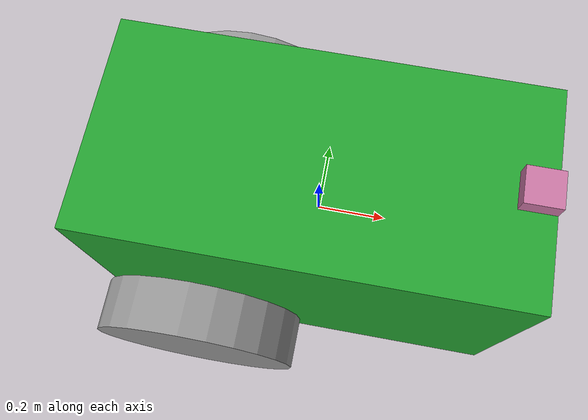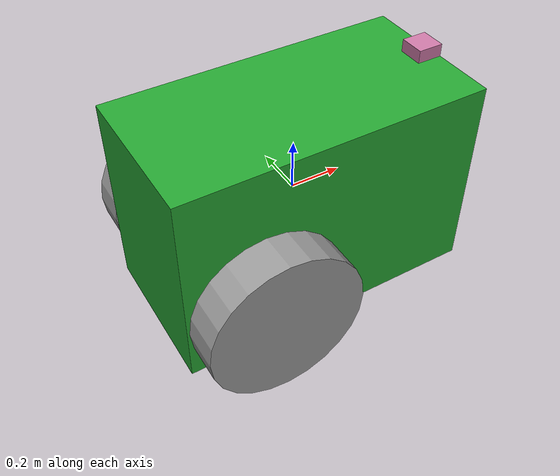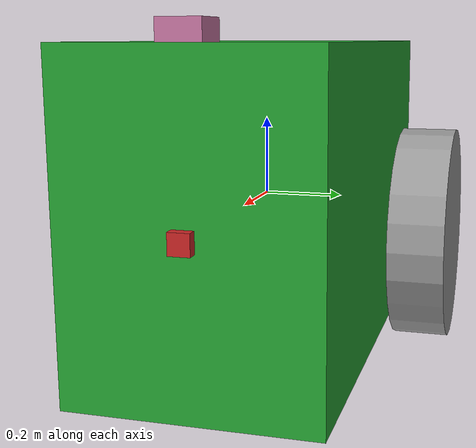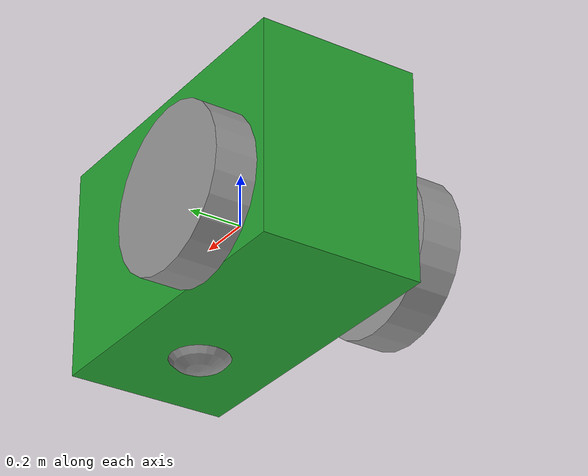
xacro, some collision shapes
<?xml version='1.0'?>

<robot name="my_robot" xmlns:xacro="http://www.ros.org/wiki/xacro">
  <xacro:include filename="$(find my_robot)/urdf/my_robot.gazebo" />
  <link name="robot_footprint"></link>

  <!--Base chassis-->

  <joint name="robot_footprint_joint" type="fixed">
    <origin xyz="0 0 0" rpy="0 0 0" />
    <parent link="robot_footprint"/>
    <child link="chassis" />
  </joint>

  <link name='chassis'>
    <pose>0 0 0.1 0 0 0</pose>

    <inertial>
      <mass value="10.0"/>
      <origin xyz="0.0 0 0" rpy=" 0 0 0"/>
      <inertia
          ixx="0.2" ixy="0" ixz="0"
          iyy="0.2" iyz="0"
          izz="0.2"
      />
    </inertial>

    <collision name='collision'>
      <origin xyz="0 0 0" rpy=" 0 0 0"/>
      <geometry>
        <box size="1.2 0.6 0.8"/>
      </geometry>
    </collision>

    <visual name='chassis_visual'>
      <origin xyz="0 0 0" rpy=" 0 0 0"/>
      <geometry>
        <box size="1.2 0.6 0.8"/>
      </geometry>
    </visual>

  </link>

  <gazebo reference="chassis">
    <material>Gazebo/Green</material>
  </gazebo>

  <!--caster-->

  <joint name="front_caster_joint" type="fixed">
    <origin xyz="0.25 0 -0.3" rpy="0 0 0" />
    <parent link="robot_footprint"/>
    <child link="front_caster" />
  </joint>

  <link name="front_caster">

    <inertial>
      <mass value="1.0"/>
      <origin xyz="0 0 0"/>
      <inertia ixx="0.001" ixy="0" ixz="0"
               iyy="0.001" iyz="0"
               izz="0.001"/>
    </inertial>

    <collision name='front_caster_collision'>
      <origin xyz="0.0 0 0" rpy=" 0 0 0"/>
      <geometry>
        <sphere radius="0.149"/>
      </geometry>
    </collision>

    <visual name='front_caster_visual'>
      <origin xyz="0.0 0 0" rpy=" 0 0 0"/>
      <geometry>
        <sphere radius="0.15"/>
      </geometry>
    </visual>
  </link>

  <gazebo reference="front_caster">
    <mu1 value="0.0"/>
    <mu2 value="0.0"/>
    <kp value="10000000.0"/>
    <kd value="1.0"/>
    <fdir1 value="1 0 0"/>
    <material>Gazebo/Grey</material>
    <turnGravityOff>false</turnGravityOff>
  </gazebo>

  <!--wheels-->
  <joint name='right_rear_wheel_hinge' type="continuous">
    <origin xyz="-0.3 -0.4 -0.15" rpy="0 0 0"/>
    <child link="right_rear_wheel"/>
    <parent link="chassis"/>
    <axis xyz="0 1 0" rpy="0 0 0"/>
    <limit effort="10000" velocity="1000"/>
    <dynamics damping="1.0" friction="1.0"/>
  </joint>

  <link name='right_rear_wheel'>

    <inertial>
      <mass value="4.0"/>
      <origin xyz="0.0 0 0" rpy=" 0 1.5707 1.5707"/>
      <inertia
          ixx="0.2" ixy="0" ixz="0"
          iyy="0.2" iyz="0"
          izz="0.2"
      />
    </inertial>

    <collision name='right_rear_wheel_collision'>
      <origin xyz="0 0 0" rpy=" 0 1.5707 1.5707"/>
      <geometry>
        <cylinder length="0.15" radius="0.3"/>
      </geometry>
    </collision>

    <visual name='right_rear_wheel_visual'>
      <origin xyz="0 0 0" rpy=" 0 1.5707 1.5707"/>
      <geometry>
        <cylinder length="0.15" radius="0.3"/>
      </geometry>
    </visual>
  </link>

  <gazebo reference="right_rear_wheel">
    <material>Gazebo/Gray</material>
  </gazebo>

  <joint name='left_rear_wheel_hinge' type="continuous">
    <origin xyz="-0.3 0.4 -0.15" rpy="0 0 0"/>
    <child link="left_rear_wheel"/>
    <parent link="chassis"/>
    <axis xyz="0 1 0" rpy="0 0 0"/>
    <limit effort="10000" velocity="1000"/>
    <dynamics damping="1.0" friction="1.0"/>
  </joint>

  <link name='left_rear_wheel'>

    <inertial>
      <mass value="4.0"/>
      <origin xyz="0.0 0 0" rpy=" 0 1.5707 1.5707"/>
      <inertia
          ixx="0.2" ixy="0" ixz="0"
          iyy="0.2" iyz="0"
          izz="0.2"
      />
    </inertial>

    <collision name='left_rear_wheel_collision'>
      <origin xyz="0 0 0" rpy=" 0 1.5707 1.5707"/>
      <geometry>
        <cylinder length="0.15" radius="0.3"/>
      </geometry>
    </collision>

    <visual name='left_rear_wheel_visual'>
      <origin xyz="0 0 0" rpy=" 0 1.5707 1.5707"/>
      <geometry>
        <cylinder length="0.15" radius="0.3"/>
      </geometry>
    </visual>
  </link>

  <gazebo reference="left_rear_wheel">
    <material>Gazebo/Gray</material>
  </gazebo>

  <!--sensors and cameras-->
  <joint name="camera_joint" type="fixed">
    <origin xyz="0.6 0 0" rpy="0 0 0" />
    <parent link="chassis"/>
    <child link="camera" />
  </joint>

  <link name='camera'>
    <inertial>
      <mass value="0.1"/>
      <origin xyz="0.0 0 0" rpy=" 0 0 0"/>
      <inertia
          ixx="1e-6" ixy="0" ixz="0"
          iyy="1e-6" iyz="0"
          izz="1e-6"
      />
    </inertial>

    <collision name='camera_collision'>
      <origin xyz="0 0 0" rpy=" 0 0 0"/>
      <geometry>
        <box size="0.05 0.05 0.05"/>
      </geometry>
    </collision>

    <visual name='camera_visual'>
      <origin xyz="0 0 0" rpy=" 0 0 0"/>
      <geometry>
        <box size="0.05 0.05 0.05"/>
      </geometry>
    </visual>
  </link>

  <gazebo reference="camera">
    <material>Gazebo/Red</material>
  </gazebo>

  <joint name="hokuyo_joint" type="fixed">
    <origin xyz="0.55 0 0.4" rpy="0 0 0" />
    <parent link="chassis" />
    <child link="hokuyo" />
    <axis xyz="0 1 0" rpy="0 0 0" />
  </joint>

  <link name='hokuyo'>
    <inertial>
      <mass value="1e-5"/>
      <origin xyz="0 0 0" rpy=" 0 0 0"/>
      <inertia
          ixx="1e-6" ixy="0" ixz="0"
          iyy="1e-6" iyz="0"
          izz="1e-6"
      />
    </inertial>

    <collision name='hokuyo_collision'>
      <origin xyz="0 0 0" rpy=" 0 0 0"/>
      <geometry>
        <box size="0.1 0.1 0.1"/>
      </geometry>
    </collision>

    <visual name='hokuyo_visual'>
      <origin xyz="0 0 0" rpy=" 0 0 0"/>
      <geometry>
        <mesh filename="package://my_robot/meshes/hokuyo.dae"/>
      </geometry>
    </visual>
  </link>

  <!-- 3d sensor -->

  <joint name="camera_optical_joint" type="fixed">
    <origin xyz="0 0 0" rpy="-1.5707 0 -1.5707"/>
    <parent link="camera"/>
    <child link="camera_link_optical"/>
  </joint>

  <link name="camera_link_optical">
  </link>

</robot>
